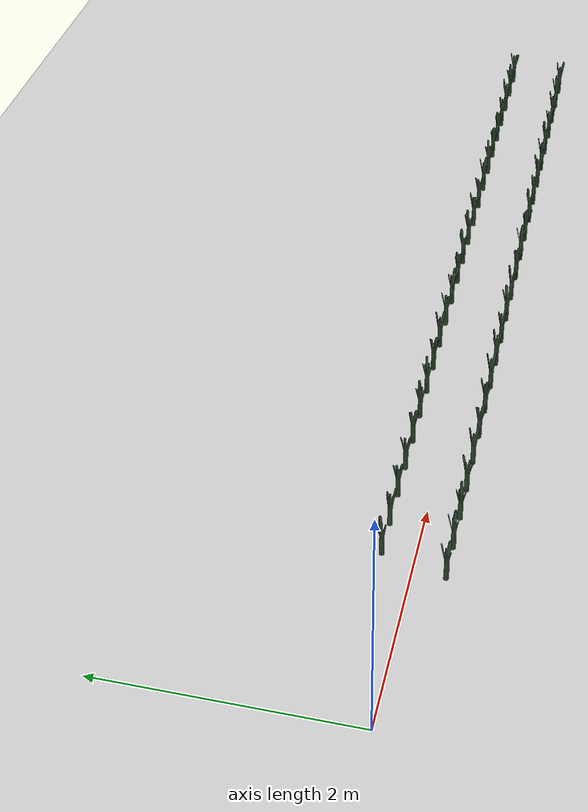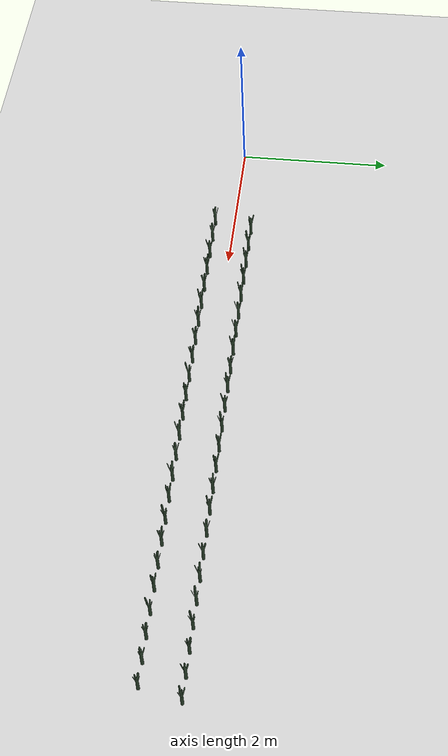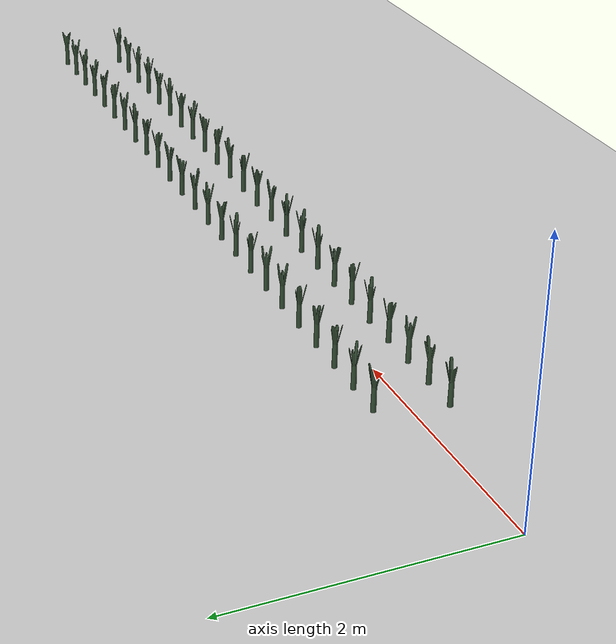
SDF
<sdf version="1.6">
 <world name="default">
  <light name="sun" type="directional">
   <pose>0 0 10 0 -0 0</pose>
   <diffuse>0.5 0.5 0.5 1</diffuse>
   <specular>0.1 0.1 0.1 1</specular>
   <attenuation>
    <range>1000</range>
    <constant>0.9</constant>
    <linear>0.01</linear>
    <quadratic>0.001</quadratic>
   </attenuation>
   <direction>0.9 0.5 -1</direction>
  </light>
  <scene><background>130 200 255 1</background><ambient>130 140 140 1</ambient></scene>
  <include><uri>model://dirt_plane</uri></include>
  <include><uri>model://Leek</uri><pose>1.500000 0.250000 0.15 0 0 44.547264</pose><static>0</static></include>
  <include><uri>model://Leek</uri><pose>1.800000 0.250000 0.15 0 0 54.182594</pose><static>0</static></include>
  <include><uri>model://Leek</uri><pose>2.100000 0.250000 0.15 0 0 115.386198</pose><static>0</static></include>
  <include><uri>model://Leek</uri><pose>2.400000 0.250000 0.15 0 0 159.241243</pose><static>0</static></include>
  <include>
   <uri>model://Leek</uri>
   <pose>2.700000 0.250000 0.15 0 0 -160.822040</pose>
   <static>0</static>
  </include>
  <include>
   <uri>model://Leek</uri>
   <pose>3.000000 0.250000 0.15 0 0 -108.033948</pose>
   <static>0</static>
  </include>
  <include><uri>model://Leek</uri><pose>3.300000 0.250000 0.15 0 0 30.118436</pose><static>0</static></include>
  <include>
   <uri>model://Leek</uri>
   <pose>3.600000 0.250000 0.15 0 0 -110.482386</pose>
   <static>0</static>
  </include>
  <include><uri>model://Leek</uri><pose>3.900000 0.250000 0.15 0 0 5.777461</pose><static>0</static></include>
  <include>
   <uri>model://Leek</uri>
   <pose>4.200000 0.250000 0.15 0 0 -104.838961</pose>
   <static>0</static>
  </include>
  <include>
   <uri>model://Leek</uri>
   <pose>4.500000 0.250000 0.15 0 0 -102.297993</pose>
   <static>0</static>
  </include>
  <include><uri>model://Leek</uri><pose>4.800000 0.250000 0.15 0 0 110.437820</pose><static>0</static></include>
  <include>
   <uri>model://Leek</uri>
   <pose>5.100000 0.250000 0.15 0 0 -131.156353</pose>
   <static>0</static>
  </include>
  <include><uri>model://Leek</uri><pose>5.400000 0.250000 0.15 0 0 -37.044544</pose><static>0</static></include>
  <include><uri>model://Leek</uri><pose>5.700000 0.250000 0.15 0 0 -42.583455</pose><static>0</static></include>
  <include><uri>model://Leek</uri><pose>6.000000 0.250000 0.15 0 0 58.834096</pose><static>0</static></include>
  <include><uri>model://Leek</uri><pose>6.300000 0.250000 0.15 0 0 56.364648</pose><static>0</static></include>
  <include><uri>model://Leek</uri><pose>6.600000 0.250000 0.15 0 0 -26.299573</pose><static>0</static></include>
  <include><uri>model://Leek</uri><pose>6.900000 0.250000 0.15 0 0 -47.183563</pose><static>0</static></include>
  <include><uri>model://Leek</uri><pose>7.200000 0.250000 0.15 0 0 66.312451</pose><static>0</static></include>
  <include><uri>model://Leek</uri><pose>7.500000 0.250000 0.15 0 0 73.028155</pose><static>0</static></include>
  <include><uri>model://Leek</uri><pose>7.800000 0.250000 0.15 0 0 112.385479</pose><static>0</static></include>
  <include><uri>model://Leek</uri><pose>8.100000 0.250000 0.15 0 0 -70.427960</pose><static>0</static></include>
  <include><uri>model://Leek</uri><pose>8.400000 0.250000 0.15 0 0 -23.128379</pose><static>0</static></include>
  <include>
   <uri>model://Leek</uri>
   <pose>1.368608 -0.250000 0.15 0 0 -151.036080</pose>
   <static>0</static>
  </include>
  <include><uri>model://Leek</uri><pose>1.668608 -0.250000 0.15 0 0 6.310885</pose><static>0</static></include>
  <include><uri>model://Leek</uri><pose>1.968608 -0.250000 0.15 0 0 -7.760125</pose><static>0</static></include>
  <include>
   <uri>model://Leek</uri>
   <pose>2.268608 -0.250000 0.15 0 0 -99.338308</pose>
   <static>0</static>
  </include>
  <include><uri>model://Leek</uri><pose>2.568608 -0.250000 0.15 0 0 12.036538</pose><static>0</static></include>
  <include><uri>model://Leek</uri><pose>2.868608 -0.250000 0.15 0 0 77.898372</pose><static>0</static></include>
  <include><uri>model://Leek</uri><pose>3.168608 -0.250000 0.15 0 0 51.736850</pose><static>0</static></include>
  <include>
   <uri>model://Leek</uri>
   <pose>3.468608 -0.250000 0.15 0 0 -132.388108</pose>
   <static>0</static>
  </include>
  <include>
   <uri>model://Leek</uri>
   <pose>3.768608 -0.250000 0.15 0 0 106.057414</pose>
   <static>0</static>
  </include>
  <include><uri>model://Leek</uri><pose>4.068608 -0.250000 0.15 0 0 67.092219</pose><static>0</static></include>
  <include>
   <uri>model://Leek</uri>
   <pose>4.368608 -0.250000 0.15 0 0 -93.767778</pose>
   <static>0</static>
  </include>
  <include>
   <uri>model://Leek</uri>
   <pose>4.668608 -0.250000 0.15 0 0 -68.112259</pose>
   <static>0</static>
  </include>
  <include>
   <uri>model://Leek</uri>
   <pose>4.968608 -0.250000 0.15 0 0 147.360089</pose>
   <static>0</static>
  </include>
  <include>
   <uri>model://Leek</uri>
   <pose>5.268608 -0.250000 0.15 0 0 -100.480593</pose>
   <static>0</static>
  </include>
  <include>
   <uri>model://Leek</uri>
   <pose>5.568608 -0.250000 0.15 0 0 -135.190930</pose>
   <static>0</static>
  </include>
  <include>
   <uri>model://Leek</uri>
   <pose>5.868608 -0.250000 0.15 0 0 151.638982</pose>
   <static>0</static>
  </include>
  <include>
   <uri>model://Leek</uri>
   <pose>6.168608 -0.250000 0.15 0 0 154.746871</pose>
   <static>0</static>
  </include>
  <include>
   <uri>model://Leek</uri>
   <pose>6.468608 -0.250000 0.15 0 0 -124.430131</pose>
   <static>0</static>
  </include>
  <include>
   <uri>model://Leek</uri>
   <pose>6.768608 -0.250000 0.15 0 0 -75.707472</pose>
   <static>0</static>
  </include>
  <include>
   <uri>model://Leek</uri>
   <pose>7.068608 -0.250000 0.15 0 0 -43.239856</pose>
   <static>0</static>
  </include>
  <include>
   <uri>model://Leek</uri>
   <pose>7.368608 -0.250000 0.15 0 0 -165.297086</pose>
   <static>0</static>
  </include>
  <include>
   <uri>model://Leek</uri>
   <pose>7.668608 -0.250000 0.15 0 0 -132.448571</pose>
   <static>0</static>
  </include>
  <include>
   <uri>model://Leek</uri>
   <pose>7.968608 -0.250000 0.15 0 0 -106.511407</pose>
   <static>0</static>
  </include>
  <include>
   <uri>model://Leek</uri>
   <pose>8.268608 -0.250000 0.15 0 0 125.063070</pose>
   <static>0</static>
  </include>
 </world>
</sdf>

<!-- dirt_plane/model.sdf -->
<sdf version="1.4">
<model name="dirt_plane">
  <static>true</static>
    <link name="link">
      <collision name="collision">
        <geometry>
          <plane>
            <normal>0 0 1</normal>
            <size>100 100</size>
          </plane>
        </geometry>
        <surface>
          <friction>
            <ode>
              <mu>100</mu>
              <mu2>50</mu2>
            </ode>
          </friction>
        </surface>
      </collision>
      <visual name="visual">
        <cast_shadows>false</cast_shadows>
        <geometry>
          <plane>
            <normal>0 0 1</normal>
            <size>100 100</size>
          </plane>
        </geometry>
        <material>
          <script>
            <uri>model://ground_plane/materials/scripts/my_ground_plane.material</uri>
            <uri>model://ground_plane/materials/textures</uri>
            <name>my_ground_plane/Dirt</name>
          </script>
        </material>
      </visual>
    </link>
  </model>
</sdf>

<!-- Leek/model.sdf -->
<sdf version='1.6'>
  <model name='Leek'>
    <link name='link'>
      <pose frame=''>0 0 0 0 -0 0</pose>
      <inertial>
        <mass>1</mass>
        <inertia>
          <ixx>0.145833</ixx>
          <ixy>0</ixy>
          <ixz>0</ixz>
          <iyy>0.145833</iyy>
          <iyz>0</iyz>
          <izz>0.125</izz>
        </inertia>
        <pose frame=''>0 0 0 0 -0 0</pose>
      </inertial>
      <self_collide>0</self_collide>
      <kinematic>0</kinematic>
      <gravity>1</gravity>
      <visual name='visual'>
        <geometry>
          <mesh>
            <uri>model://Leek/Poireau.dae</uri>
            <scale>1 1 1</scale>
          </mesh>
        </geometry>
        <material>
          <script>
            <name>Gazebo/Grey</name>
            <uri>file://media/materials/scripts/gazebo.material</uri>
          </script>
          <ambient>0.3 0.7 0.4 0</ambient>
          <diffuse>0.2 0.3 0.2 0</diffuse>
          <specular>0 0 0 1</specular>
          <emissive>0 0 0 1</emissive>
          <shader type='vertex'>
            <normal_map>__default__</normal_map>
          </shader>
        </material>
        <pose frame=''>0 0 -0.08 0 -0 0</pose>
        <cast_shadows>1</cast_shadows>
        <transparency>0</transparency>
      </visual>
      <collision name='collision'>
        <laser_retro>0</laser_retro>
        <max_contacts>10</max_contacts>
        <pose frame=''>0 0 0 0 -0 0</pose>
        <geometry>
          <cylinder>
            <radius>0.02</radius>
            <length>0.25</length>
          </cylinder>
        </geometry>
        <surface>
          <friction>
            <ode>
              <mu>1</mu>
              <mu2>1</mu2>
              <fdir1>0 0 0</fdir1>
              <slip1>0</slip1>
              <slip2>0</slip2>
            </ode>
            <torsional>
              <coefficient>1</coefficient>
              <patch_radius>0</patch_radius>
              <surface_radius>0</surface_radius>
              <use_patch_radius>1</use_patch_radius>
              <ode>
                <slip>0</slip>
              </ode>
            </torsional>
          </friction>
          <bounce>
            <restitution_coefficient>0</restitution_coefficient>
            <threshold>1e+06</threshold>
          </bounce>
          <contact>
            <collide_without_contact>0</collide_without_contact>
            <collide_without_contact_bitmask>1</collide_without_contact_bitmask>
            <collide_bitmask>1</collide_bitmask>
            <ode>
              <soft_cfm>0</soft_cfm>
              <soft_erp>0.2</soft_erp>
              <kp>1e+13</kp>
              <kd>1</kd>
              <max_vel>0.01</max_vel>
              <min_depth>0</min_depth>
            </ode>
            <bullet>
              <split_impulse>1</split_impulse>
              <split_impulse_penetration_threshold>-0.01</split_impulse_penetration_threshold>
              <soft_cfm>0</soft_cfm>
              <soft_erp>0.2</soft_erp>
              <kp>1e+13</kp>
              <kd>1</kd>
            </bullet>
          </contact>
        </surface>
      </collision>
    </link>
    <static>0</static>
    <allow_auto_disable>1</allow_auto_disable>
  </model>
</sdf>
